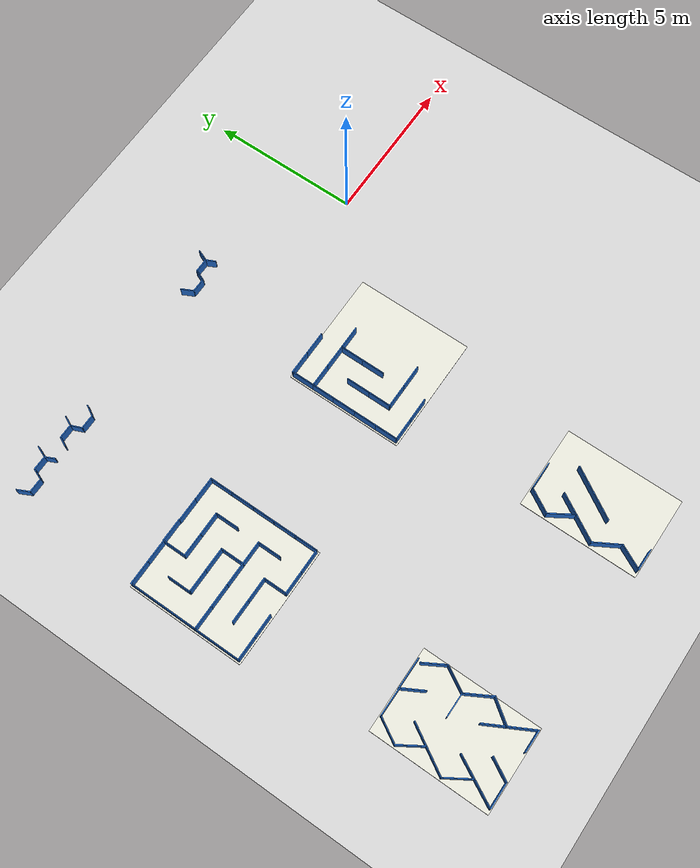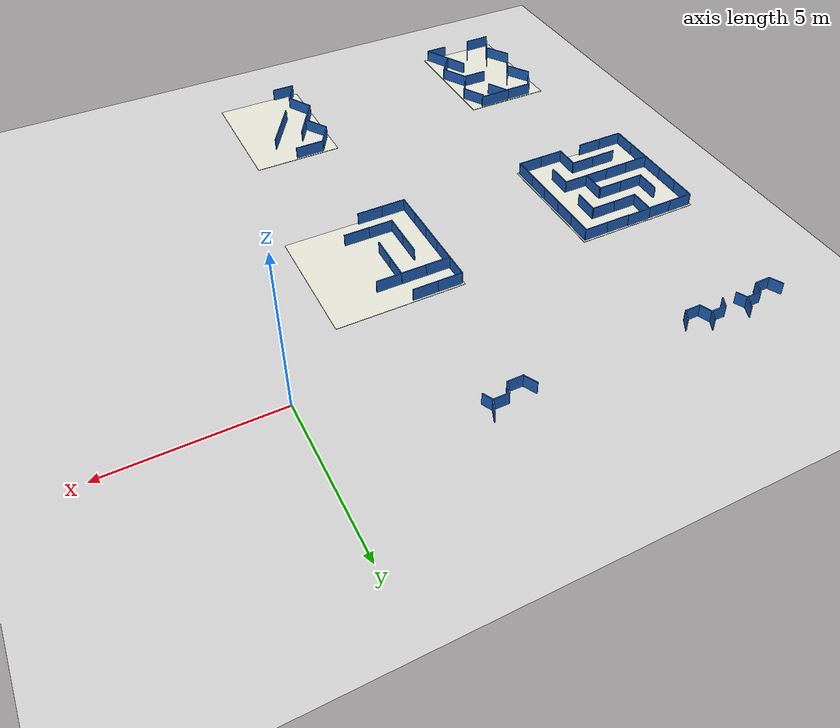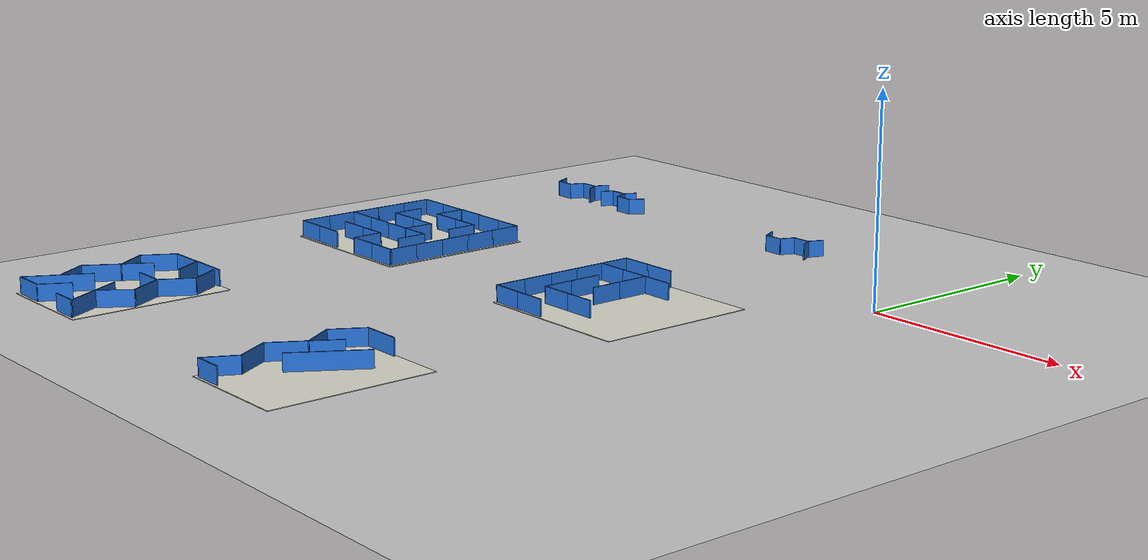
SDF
<sdf version="1.10">
 <world name="nhom8_maze_multi">
  <model name="ground_plane">
   <static>true</static>
   <link name="link">
    <collision name="collision">
     <geometry><plane><normal>0 0 1</normal><size>80.0 80.0</size></plane></geometry>
     <surface><friction><ode><mu>40</mu></ode></friction></surface>
    </collision>
    <visual name="visual">
     <geometry><plane><normal>0 0 1</normal><size>80.0 80.0</size></plane></geometry>
     <material>
      <ambient>0.8 0.8 0.8 1</ambient>
      <diffuse>0.8 0.8 0.8 1</diffuse>
      <specular>0.8 0.8 0.8 1</specular>
     </material>
    </visual>
   </link>
  </model>
  <model name="delta_1_wall_000">
   <static>true</static>
   <pose>-12.441500 -10.090300 0.2000 0 0 0.000000</pose>
   <link name="link">
    <collision name="col"><geometry><box><size>0.9460 0.0300 0.4000</size></box></geometry></collision>
    <visual name="vis">
     <geometry><box><size>0.9460 0.0300 0.4000</size></box></geometry>
     <material><ambient>0.15 0.45 0.85 1</ambient><diffuse>0.15 0.45 0.85 1</diffuse></material>
    </visual>
   </link>
  </model>
  <model name="delta_1_wall_001">
   <static>true</static>
   <pose>-11.494450 -11.616700 0.2000 0 0 0.000000</pose>
   <link name="link">
    <collision name="col"><geometry><box><size>0.8179 0.0300 0.4000</size></box></geometry></collision>
    <visual name="vis">
     <geometry><box><size>0.8179 0.0300 0.4000</size></box></geometry>
     <material><ambient>0.15 0.45 0.85 1</ambient><diffuse>0.15 0.45 0.85 1</diffuse></material>
    </visual>
   </link>
  </model>
  <model name="delta_1_wall_002">
   <static>true</static>
   <pose>-12.841300 -13.911000 0.2000 0 0 0.000000</pose>
   <link name="link">
    <collision name="col"><geometry><box><size>0.8626 0.0300 0.4000</size></box></geometry></collision>
    <visual name="vis">
     <geometry><box><size>0.8626 0.0300 0.4000</size></box></geometry>
     <material><ambient>0.15 0.45 0.85 1</ambient><diffuse>0.15 0.45 0.85 1</diffuse></material>
    </visual>
   </link>
  </model>
  <model name="delta_1_wall_003">
   <static>true</static>
   <pose>-11.094650 -13.911000 0.2000 0 0 0.000000</pose>
   <link name="link">
    <collision name="col"><geometry><box><size>0.7345 0.0300 0.4000</size></box></geometry></collision>
    <visual name="vis">
     <geometry><box><size>0.7345 0.0300 0.4000</size></box></geometry>
     <material><ambient>0.15 0.45 0.85 1</ambient><diffuse>0.15 0.45 0.85 1</diffuse></material>
    </visual>
   </link>
  </model>
  <model name="delta_1_wall_004">
   <static>true</static>
   <pose>-10.866200 -10.524550 0.2000 0 0 -1.047164</pose>
   <link name="link">
    <collision name="col"><geometry><box><size>0.8184 0.0300 0.4000</size></box></geometry></collision>
    <visual name="vis">
     <geometry><box><size>0.8184 0.0300 0.4000</size></box></geometry>
     <material><ambient>0.15 0.45 0.85 1</ambient><diffuse>0.15 0.45 0.85 1</diffuse></material>
    </visual>
   </link>
  </model>
  <model name="delta_1_wall_005">
   <static>true</static>
   <pose>-11.798550 -10.424650 0.2000 0 0 -1.065410</pose>
   <link name="link">
    <collision name="col"><geometry><box><size>0.7942 0.0300 0.4000</size></box></geometry></collision>
    <visual name="vis">
     <geometry><box><size>0.7942 0.0300 0.4000</size></box></geometry>
     <material><ambient>0.15 0.45 0.85 1</ambient><diffuse>0.15 0.45 0.85 1</diffuse></material>
    </visual>
   </link>
  </model>
  <model name="delta_1_wall_006">
   <static>true</static>
   <pose>-10.876250 -12.020350 0.2000 0 0 -1.063840</pose>
   <link name="link">
    <collision name="col"><geometry><box><size>0.9534 0.0300 0.4000</size></box></geometry></collision>
    <visual name="vis">
     <geometry><box><size>0.9534 0.0300 0.4000</size></box></geometry>
     <material><ambient>0.15 0.45 0.85 1</ambient><diffuse>0.15 0.45 0.85 1</diffuse></material>
    </visual>
   </link>
  </model>
  <model name="delta_1_wall_007">
   <static>true</static>
   <pose>-11.122900 -13.194150 0.2000 0 0 -1.082881</pose>
   <link name="link">
    <collision name="col"><geometry><box><size>1.6532 0.0300 0.4000</size></box></geometry></collision>
    <visual name="vis">
     <geometry><box><size>1.6532 0.0300 0.4000</size></box></geometry>
     <material><ambient>0.15 0.45 0.85 1</ambient><diffuse>0.15 0.45 0.85 1</diffuse></material>
    </visual>
   </link>
  </model>
  <model name="delta_1_wall_008">
   <static>true</static>
   <pose>-13.097700 -11.212650 0.2000 0 0 -1.010998</pose>
   <link name="link">
    <collision name="col"><geometry><box><size>0.9107 0.0300 0.4000</size></box></geometry></collision>
    <visual name="vis">
     <geometry><box><size>0.9107 0.0300 0.4000</size></box></geometry>
     <material><ambient>0.15 0.45 0.85 1</ambient><diffuse>0.15 0.45 0.85 1</diffuse></material>
    </visual>
   </link>
  </model>
  <model name="delta_1_wall_009">
   <static>true</static>
   <pose>-13.097950 -12.741300 0.2000 0 0 -1.010777</pose>
   <link name="link">
    <collision name="col"><geometry><box><size>0.9110 0.0300 0.4000</size></box></geometry></collision>
    <visual name="vis">
     <geometry><box><size>0.9110 0.0300 0.4000</size></box></geometry>
     <material><ambient>0.15 0.45 0.85 1</ambient><diffuse>0.15 0.45 0.85 1</diffuse></material>
    </visual>
   </link>
  </model>
  <model name="delta_1_wall_010">
   <static>true</static>
   <pose>-10.905900 -12.774400 0.2000 0 0 0.944004</pose>
   <link name="link">
    <collision name="col"><geometry><box><size>0.8954 0.0300 0.4000</size></box></geometry></collision>
    <visual name="vis">
     <geometry><box><size>0.8954 0.0300 0.4000</size></box></geometry>
     <material><ambient>0.15 0.45 0.85 1</ambient><diffuse>0.15 0.45 0.85 1</diffuse></material>
    </visual>
   </link>
  </model>
  <model name="delta_1_wall_011">
   <static>true</static>
   <pose>-10.884750 -11.241300 0.2000 0 0 1.049310</pose>
   <link name="link">
    <collision name="col"><geometry><box><size>0.8959 0.0300 0.4000</size></box></geometry></collision>
    <visual name="vis">
     <geometry><box><size>0.8959 0.0300 0.4000</size></box></geometry>
     <material><ambient>0.15 0.45 0.85 1</ambient><diffuse>0.15 0.45 0.85 1</diffuse></material>
    </visual>
   </link>
  </model>
  <model name="delta_1_wall_012">
   <static>true</static>
   <pose>-12.240150 -13.576000 0.2000 0 0 1.066422</pose>
   <link name="link">
    <collision name="col"><geometry><box><size>0.7952 0.0300 0.4000</size></box></geometry></collision>
    <visual name="vis">
     <geometry><box><size>0.7952 0.0300 0.4000</size></box></geometry>
     <material><ambient>0.15 0.45 0.85 1</ambient><diffuse>0.15 0.45 0.85 1</diffuse></material>
    </visual>
   </link>
  </model>
  <model name="delta_1_wall_013">
   <static>true</static>
   <pose>-12.876700 -13.193950 0.2000 0 0 1.082511</pose>
   <link name="link">
    <collision name="col"><geometry><box><size>1.6538 0.0300 0.4000</size></box></geometry></collision>
    <visual name="vis">
     <geometry><box><size>1.6538 0.0300 0.4000</size></box></geometry>
     <material><ambient>0.15 0.45 0.85 1</ambient><diffuse>0.15 0.45 0.85 1</diffuse></material>
    </visual>
   </link>
  </model>
  <model name="delta_1_wall_014">
   <static>true</static>
   <pose>-12.913450 -11.657550 0.2000 0 0 1.038568</pose>
   <link name="link">
    <collision name="col"><geometry><box><size>1.6792 0.0300 0.4000</size></box></geometry></collision>
    <visual name="vis">
     <geometry><box><size>1.6792 0.0300 0.4000</size></box></geometry>
     <material><ambient>0.15 0.45 0.85 1</ambient><diffuse>0.15 0.45 0.85 1</diffuse></material>
    </visual>
   </link>
  </model>
  <model name="delta_1_wall_015">
   <static>true</static>
   <pose>-13.115550 -10.464900 0.2000 0 0 1.047645</pose>
   <link name="link">
    <collision name="col"><geometry><box><size>0.8949 0.0300 0.4000</size></box></geometry></collision>
    <visual name="vis">
     <geometry><box><size>0.8949 0.0300 0.4000</size></box></geometry>
     <material><ambient>0.15 0.45 0.85 1</ambient><diffuse>0.15 0.45 0.85 1</diffuse></material>
    </visual>
   </link>
  </model>
  <model name="delta_1_wall_016">
   <static>true</static>
   <pose>-11.505100 -10.077200 0.2000 0 0 0.000000</pose>
   <link name="link">
    <collision name="col"><geometry><box><size>1.0600 0.0300 0.4000</size></box></geometry></collision>
    <visual name="vis">
     <geometry><box><size>1.0600 0.0300 0.4000</size></box></geometry>
     <material><ambient>0.15 0.45 0.85 1</ambient><diffuse>0.15 0.45 0.85 1</diffuse></material>
    </visual>
   </link>
  </model>
  <model name="delta_1_floor">
   <static>true</static>
   <pose>-12.000000 -12.000000 -0.02 0 0 0</pose>
   <link name="link">
    <collision name="col"><geometry><box><size>2.7966 3.9471 0.03</size></box></geometry></collision>
    <visual name="vis">
     <geometry><box><size>2.7966 3.9471 0.03</size></box></geometry>
     <material><ambient>0.87 0.87 0.82 1</ambient><diffuse>0.87 0.87 0.82 1</diffuse></material>
    </visual>
   </link>
  </model>
  <model name="delta_2_wall_000">
   <static>true</static>
   <pose>-4.441500 -10.090300 0.2000 0 0 0.000000</pose>
   <link name="link">
    <collision name="col"><geometry><box><size>0.9460 0.0300 0.4000</size></box></geometry></collision>
    <visual name="vis">
     <geometry><box><size>0.9460 0.0300 0.4000</size></box></geometry>
     <material><ambient>0.15 0.45 0.85 1</ambient><diffuse>0.15 0.45 0.85 1</diffuse></material>
    </visual>
   </link>
  </model>
  <model name="delta_2_wall_001">
   <static>true</static>
   <pose>-4.905350 -13.911000 0.2000 0 0 0.000000</pose>
   <link name="link">
    <collision name="col"><geometry><box><size>0.7345 0.0300 0.4000</size></box></geometry></collision>
    <visual name="vis">
     <geometry><box><size>0.7345 0.0300 0.4000</size></box></geometry>
     <material><ambient>0.15 0.45 0.85 1</ambient><diffuse>0.15 0.45 0.85 1</diffuse></material>
    </visual>
   </link>
  </model>
  <model name="delta_2_wall_007">
   <static>true</static>
   <pose>-5.097150 -11.212150 0.2000 0 0 -1.011161</pose>
   <link name="link">
    <collision name="col"><geometry><box><size>0.9104 0.0300 0.4000</size></box></geometry></collision>
    <visual name="vis">
     <geometry><box><size>0.9104 0.0300 0.4000</size></box></geometry>
     <material><ambient>0.15 0.45 0.85 1</ambient><diffuse>0.15 0.45 0.85 1</diffuse></material>
    </visual>
   </link>
  </model>
  <model name="delta_2_wall_009">
   <static>true</static>
   <pose>-5.103450 -12.763950 0.2000 0 0 -1.047197</pose>
   <link name="link">
    <collision name="col"><geometry><box><size>0.9442 0.0300 0.4000</size></box></geometry></collision>
    <visual name="vis">
     <geometry><box><size>0.9442 0.0300 0.4000</size></box></geometry>
     <material><ambient>0.15 0.45 0.85 1</ambient><diffuse>0.15 0.45 0.85 1</diffuse></material>
    </visual>
   </link>
  </model>
  <model name="delta_2_wall_013">
   <static>true</static>
   <pose>-4.005450 -11.668350 0.2000 0 0 1.024022</pose>
   <link name="link">
    <collision name="col"><geometry><box><size>1.8404 0.0300 0.4000</size></box></geometry></collision>
    <visual name="vis">
     <geometry><box><size>1.8404 0.0300 0.4000</size></box></geometry>
     <material><ambient>0.15 0.45 0.85 1</ambient><diffuse>0.15 0.45 0.85 1</diffuse></material>
    </visual>
   </link>
  </model>
  <model name="delta_2_wall_014">
   <static>true</static>
   <pose>-5.066250 -13.535400 0.2000 0 0 1.099670</pose>
   <link name="link">
    <collision name="col"><geometry><box><size>0.8731 0.0300 0.4000</size></box></geometry></collision>
    <visual name="vis">
     <geometry><box><size>0.8731 0.0300 0.4000</size></box></geometry>
     <material><ambient>0.15 0.45 0.85 1</ambient><diffuse>0.15 0.45 0.85 1</diffuse></material>
    </visual>
   </link>
  </model>
  <model name="delta_2_wall_015">
   <static>true</static>
   <pose>-4.913500 -11.657600 0.2000 0 0 1.038547</pose>
   <link name="link">
    <collision name="col"><geometry><box><size>1.6793 0.0300 0.4000</size></box></geometry></collision>
    <visual name="vis">
     <geometry><box><size>1.6793 0.0300 0.4000</size></box></geometry>
     <material><ambient>0.15 0.45 0.85 1</ambient><diffuse>0.15 0.45 0.85 1</diffuse></material>
    </visual>
   </link>
  </model>
  <model name="delta_2_wall_016">
   <static>true</static>
   <pose>-5.115150 -10.464750 0.2000 0 0 1.048252</pose>
   <link name="link">
    <collision name="col"><geometry><box><size>0.8942 0.0300 0.4000</size></box></geometry></collision>
    <visual name="vis">
     <geometry><box><size>0.8942 0.0300 0.4000</size></box></geometry>
     <material><ambient>0.15 0.45 0.85 1</ambient><diffuse>0.15 0.45 0.85 1</diffuse></material>
    </visual>
   </link>
  </model>
  <model name="delta_2_floor">
   <static>true</static>
   <pose>-4.000000 -12.000000 -0.02 0 0 0</pose>
   <link name="link">
    <collision name="col"><geometry><box><size>2.7961 3.9472 0.03</size></box></geometry></collision>
    <visual name="vis">
     <geometry><box><size>2.7961 3.9472 0.03</size></box></geometry>
     <material><ambient>0.87 0.87 0.82 1</ambient><diffuse>0.87 0.87 0.82 1</diffuse></material>
    </visual>
   </link>
  </model>
  <model name="ortho_3_wall_000">
   <static>true</static>
   <pose>-13.917600 -2.465950 0.2000 0 0 1.570796</pose>
   <link name="link">
    <collision name="col"><geometry><box><size>0.7971 0.0300 0.4000</size></box></geometry></collision>
    <visual name="vis">
     <geometry><box><size>0.7971 0.0300 0.4000</size></box></geometry>
     <material><ambient>0.15 0.45 0.85 1</ambient><diffuse>0.15 0.45 0.85 1</diffuse></material>
    </visual>
   </link>
  </model>
  <model name="ortho_3_wall_001">
   <static>true</static>
   <pose>-13.917600 -3.233000 0.2000 0 0 1.570796</pose>
   <link name="link">
    <collision name="col"><geometry><box><size>0.7970 0.0300 0.4000</size></box></geometry></collision>
    <visual name="vis">
     <geometry><box><size>0.7970 0.0300 0.4000</size></box></geometry>
     <material><ambient>0.15 0.45 0.85 1</ambient><diffuse>0.15 0.45 0.85 1</diffuse></material>
    </visual>
   </link>
  </model>
  <model name="ortho_3_wall_002">
   <static>true</static>
   <pose>-13.917600 -4.000000 0.2000 0 0 1.570796</pose>
   <link name="link">
    <collision name="col"><geometry><box><size>0.7970 0.0300 0.4000</size></box></geometry></collision>
    <visual name="vis">
     <geometry><box><size>0.7970 0.0300 0.4000</size></box></geometry>
     <material><ambient>0.15 0.45 0.85 1</ambient><diffuse>0.15 0.45 0.85 1</diffuse></material>
    </visual>
   </link>
  </model>
  <model name="ortho_3_wall_003">
   <static>true</static>
   <pose>-13.917600 -4.767000 0.2000 0 0 1.570796</pose>
   <link name="link">
    <collision name="col"><geometry><box><size>0.7970 0.0300 0.4000</size></box></geometry></collision>
    <visual name="vis">
     <geometry><box><size>0.7970 0.0300 0.4000</size></box></geometry>
     <material><ambient>0.15 0.45 0.85 1</ambient><diffuse>0.15 0.45 0.85 1</diffuse></material>
    </visual>
   </link>
  </model>
  <model name="ortho_3_wall_004">
   <static>true</static>
   <pose>-13.917600 -5.534050 0.2000 0 0 1.570796</pose>
   <link name="link">
    <collision name="col"><geometry><box><size>0.7971 0.0300 0.4000</size></box></geometry></collision>
    <visual name="vis">
     <geometry><box><size>0.7971 0.0300 0.4000</size></box></geometry>
     <material><ambient>0.15 0.45 0.85 1</ambient><diffuse>0.15 0.45 0.85 1</diffuse></material>
    </visual>
   </link>
  </model>
  <model name="ortho_3_wall_005">
   <static>true</static>
   <pose>-13.150500 -3.233000 0.2000 0 0 1.570796</pose>
   <link name="link">
    <collision name="col"><geometry><box><size>0.7970 0.0300 0.4000</size></box></geometry></collision>
    <visual name="vis">
     <geometry><box><size>0.7970 0.0300 0.4000</size></box></geometry>
     <material><ambient>0.15 0.45 0.85 1</ambient><diffuse>0.15 0.45 0.85 1</diffuse></material>
    </visual>
   </link>
  </model>
  <model name="ortho_3_wall_006">
   <static>true</static>
   <pose>-12.383500 -2.465950 0.2000 0 0 1.570796</pose>
   <link name="link">
    <collision name="col"><geometry><box><size>0.7971 0.0300 0.4000</size></box></geometry></collision>
    <visual name="vis">
     <geometry><box><size>0.7971 0.0300 0.4000</size></box></geometry>
     <material><ambient>0.15 0.45 0.85 1</ambient><diffuse>0.15 0.45 0.85 1</diffuse></material>
    </visual>
   </link>
  </model>
  <model name="ortho_3_wall_007">
   <static>true</static>
   <pose>-11.616500 -4.000000 0.2000 0 0 1.570796</pose>
   <link name="link">
    <collision name="col"><geometry><box><size>0.7970 0.0300 0.4000</size></box></geometry></collision>
    <visual name="vis">
     <geometry><box><size>0.7970 0.0300 0.4000</size></box></geometry>
     <material><ambient>0.15 0.45 0.85 1</ambient><diffuse>0.15 0.45 0.85 1</diffuse></material>
    </visual>
   </link>
  </model>
  <model name="ortho_3_wall_008">
   <static>true</static>
   <pose>-11.616500 -5.534050 0.2000 0 0 1.570796</pose>
   <link name="link">
    <collision name="col"><geometry><box><size>0.7971 0.0300 0.4000</size></box></geometry></collision>
    <visual name="vis">
     <geometry><box><size>0.7971 0.0300 0.4000</size></box></geometry>
     <material><ambient>0.15 0.45 0.85 1</ambient><diffuse>0.15 0.45 0.85 1</diffuse></material>
    </visual>
   </link>
  </model>
  <model name="ortho_3_wall_009">
   <static>true</static>
   <pose>-10.849500 -3.233000 0.2000 0 0 1.570796</pose>
   <link name="link">
    <collision name="col"><geometry><box><size>0.7970 0.0300 0.4000</size></box></geometry></collision>
    <visual name="vis">
     <geometry><box><size>0.7970 0.0300 0.4000</size></box></geometry>
     <material><ambient>0.15 0.45 0.85 1</ambient><diffuse>0.15 0.45 0.85 1</diffuse></material>
    </visual>
   </link>
  </model>
  <model name="ortho_3_wall_010">
   <static>true</static>
   <pose>-10.849500 -4.767000 0.2000 0 0 1.570796</pose>
   <link name="link">
    <collision name="col"><geometry><box><size>0.7970 0.0300 0.4000</size></box></geometry></collision>
    <visual name="vis">
     <geometry><box><size>0.7970 0.0300 0.4000</size></box></geometry>
     <material><ambient>0.15 0.45 0.85 1</ambient><diffuse>0.15 0.45 0.85 1</diffuse></material>
    </visual>
   </link>
  </model>
  <model name="ortho_3_wall_011">
   <static>true</static>
   <pose>-10.082400 -2.465950 0.2000 0 0 1.570796</pose>
   <link name="link">
    <collision name="col"><geometry><box><size>0.7971 0.0300 0.4000</size></box></geometry></collision>
    <visual name="vis">
     <geometry><box><size>0.7971 0.0300 0.4000</size></box></geometry>
     <material><ambient>0.15 0.45 0.85 1</ambient><diffuse>0.15 0.45 0.85 1</diffuse></material>
    </visual>
   </link>
  </model>
  <model name="ortho_3_wall_012">
   <static>true</static>
   <pose>-10.082400 -3.233000 0.2000 0 0 1.570796</pose>
   <link name="link">
    <collision name="col"><geometry><box><size>0.7970 0.0300 0.4000</size></box></geometry></collision>
    <visual name="vis">
     <geometry><box><size>0.7970 0.0300 0.4000</size></box></geometry>
     <material><ambient>0.15 0.45 0.85 1</ambient><diffuse>0.15 0.45 0.85 1</diffuse></material>
    </visual>
   </link>
  </model>
  <model name="ortho_3_wall_013">
   <static>true</static>
   <pose>-10.082400 -4.000000 0.2000 0 0 1.570796</pose>
   <link name="link">
    <collision name="col"><geometry><box><size>0.7970 0.0300 0.4000</size></box></geometry></collision>
    <visual name="vis">
     <geometry><box><size>0.7970 0.0300 0.4000</size></box></geometry>
     <material><ambient>0.15 0.45 0.85 1</ambient><diffuse>0.15 0.45 0.85 1</diffuse></material>
    </visual>
   </link>
  </model>
  <model name="ortho_3_wall_014">
   <static>true</static>
   <pose>-10.082400 -4.767000 0.2000 0 0 1.570796</pose>
   <link name="link">
    <collision name="col"><geometry><box><size>0.7970 0.0300 0.4000</size></box></geometry></collision>
    <visual name="vis">
     <geometry><box><size>0.7970 0.0300 0.4000</size></box></geometry>
     <material><ambient>0.15 0.45 0.85 1</ambient><diffuse>0.15 0.45 0.85 1</diffuse></material>
    </visual>
   </link>
  </model>
  <model name="ortho_3_wall_015">
   <static>true</static>
   <pose>-10.082400 -5.534050 0.2000 0 0 1.570796</pose>
   <link name="link">
    <collision name="col"><geometry><box><size>0.7971 0.0300 0.4000</size></box></geometry></collision>
    <visual name="vis">
     <geometry><box><size>0.7971 0.0300 0.4000</size></box></geometry>
     <material><ambient>0.15 0.45 0.85 1</ambient><diffuse>0.15 0.45 0.85 1</diffuse></material>
    </visual>
   </link>
  </model>
  <model name="ortho_3_wall_016">
   <static>true</static>
   <pose>-13.534050 -2.082400 0.2000 0 0 0.000000</pose>
   <link name="link">
    <collision name="col"><geometry><box><size>0.7971 0.0300 0.4000</size></box></geometry></collision>
    <visual name="vis">
     <geometry><box><size>0.7971 0.0300 0.4000</size></box></geometry>
     <material><ambient>0.15 0.45 0.85 1</ambient><diffuse>0.15 0.45 0.85 1</diffuse></material>
    </visual>
   </link>
  </model>
  <model name="ortho_3_wall_017">
   <static>true</static>
   <pose>-12.767000 -2.082400 0.2000 0 0 0.000000</pose>
   <link name="link">
    <collision name="col"><geometry><box><size>0.7970 0.0300 0.4000</size></box></geometry></collision>
    <visual name="vis">
     <geometry><box><size>0.7970 0.0300 0.4000</size></box></geometry>
     <material><ambient>0.15 0.45 0.85 1</ambient><diffuse>0.15 0.45 0.85 1</diffuse></material>
    </visual>
   </link>
  </model>
  <model name="ortho_3_wall_018">
   <static>true</static>
   <pose>-11.233000 -2.082400 0.2000 0 0 0.000000</pose>
   <link name="link">
    <collision name="col"><geometry><box><size>0.7970 0.0300 0.4000</size></box></geometry></collision>
    <visual name="vis">
     <geometry><box><size>0.7970 0.0300 0.4000</size></box></geometry>
     <material><ambient>0.15 0.45 0.85 1</ambient><diffuse>0.15 0.45 0.85 1</diffuse></material>
    </visual>
   </link>
  </model>
  <model name="ortho_3_wall_019">
   <static>true</static>
   <pose>-10.465950 -2.082400 0.2000 0 0 0.000000</pose>
   <link name="link">
    <collision name="col"><geometry><box><size>0.7971 0.0300 0.4000</size></box></geometry></collision>
    <visual name="vis">
     <geometry><box><size>0.7971 0.0300 0.4000</size></box></geometry>
     <material><ambient>0.15 0.45 0.85 1</ambient><diffuse>0.15 0.45 0.85 1</diffuse></material>
    </visual>
   </link>
  </model>
  <model name="ortho_3_wall_020">
   <static>true</static>
   <pose>-12.000000 -2.849500 0.2000 0 0 0.000000</pose>
   <link name="link">
    <collision name="col"><geometry><box><size>0.7970 0.0300 0.4000</size></box></geometry></collision>
    <visual name="vis">
     <geometry><box><size>0.7970 0.0300 0.4000</size></box></geometry>
     <material><ambient>0.15 0.45 0.85 1</ambient><diffuse>0.15 0.45 0.85 1</diffuse></material>
    </visual>
   </link>
  </model>
  <model name="ortho_3_wall_021">
   <static>true</static>
   <pose>-11.233000 -2.849500 0.2000 0 0 0.000000</pose>
   <link name="link">
    <collision name="col"><geometry><box><size>0.7970 0.0300 0.4000</size></box></geometry></collision>
    <visual name="vis">
     <geometry><box><size>0.7970 0.0300 0.4000</size></box></geometry>
     <material><ambient>0.15 0.45 0.85 1</ambient><diffuse>0.15 0.45 0.85 1</diffuse></material>
    </visual>
   </link>
  </model>
  <model name="ortho_3_wall_022">
   <static>true</static>
   <pose>-12.767000 -3.616500 0.2000 0 0 0.000000</pose>
   <link name="link">
    <collision name="col"><geometry><box><size>0.7970 0.0300 0.4000</size></box></geometry></collision>
    <visual name="vis">
     <geometry><box><size>0.7970 0.0300 0.4000</size></box></geometry>
     <material><ambient>0.15 0.45 0.85 1</ambient><diffuse>0.15 0.45 0.85 1</diffuse></material>
    </visual>
   </link>
  </model>
  <model name="ortho_3_wall_023">
   <static>true</static>
   <pose>-12.000000 -3.616500 0.2000 0 0 0.000000</pose>
   <link name="link">
    <collision name="col"><geometry><box><size>0.7970 0.0300 0.4000</size></box></geometry></collision>
    <visual name="vis">
     <geometry><box><size>0.7970 0.0300 0.4000</size></box></geometry>
     <material><ambient>0.15 0.45 0.85 1</ambient><diffuse>0.15 0.45 0.85 1</diffuse></material>
    </visual>
   </link>
  </model>
  <model name="ortho_3_wall_024">
   <static>true</static>
   <pose>-13.534050 -4.383500 0.2000 0 0 0.000000</pose>
   <link name="link">
    <collision name="col"><geometry><box><size>0.7971 0.0300 0.4000</size></box></geometry></collision>
    <visual name="vis">
     <geometry><box><size>0.7971 0.0300 0.4000</size></box></geometry>
     <material><ambient>0.15 0.45 0.85 1</ambient><diffuse>0.15 0.45 0.85 1</diffuse></material>
    </visual>
   </link>
  </model>
  <model name="ortho_3_wall_025">
   <static>true</static>
   <pose>-12.767000 -4.383500 0.2000 0 0 0.000000</pose>
   <link name="link">
    <collision name="col"><geometry><box><size>0.7970 0.0300 0.4000</size></box></geometry></collision>
    <visual name="vis">
     <geometry><box><size>0.7970 0.0300 0.4000</size></box></geometry>
     <material><ambient>0.15 0.45 0.85 1</ambient><diffuse>0.15 0.45 0.85 1</diffuse></material>
    </visual>
   </link>
  </model>
  <model name="ortho_3_wall_026">
   <static>true</static>
   <pose>-12.000000 -4.383500 0.2000 0 0 0.000000</pose>
   <link name="link">
    <collision name="col"><geometry><box><size>0.7970 0.0300 0.4000</size></box></geometry></collision>
    <visual name="vis">
     <geometry><box><size>0.7970 0.0300 0.4000</size></box></geometry>
     <material><ambient>0.15 0.45 0.85 1</ambient><diffuse>0.15 0.45 0.85 1</diffuse></material>
    </visual>
   </link>
  </model>
  <model name="ortho_3_wall_027">
   <static>true</static>
   <pose>-11.233000 -4.383500 0.2000 0 0 0.000000</pose>
   <link name="link">
    <collision name="col"><geometry><box><size>0.7970 0.0300 0.4000</size></box></geometry></collision>
    <visual name="vis">
     <geometry><box><size>0.7970 0.0300 0.4000</size></box></geometry>
     <material><ambient>0.15 0.45 0.85 1</ambient><diffuse>0.15 0.45 0.85 1</diffuse></material>
    </visual>
   </link>
  </model>
  <model name="ortho_3_wall_028">
   <static>true</static>
   <pose>-12.767000 -5.150500 0.2000 0 0 0.000000</pose>
   <link name="link">
    <collision name="col"><geometry><box><size>0.7970 0.0300 0.4000</size></box></geometry></collision>
    <visual name="vis">
     <geometry><box><size>0.7970 0.0300 0.4000</size></box></geometry>
     <material><ambient>0.15 0.45 0.85 1</ambient><diffuse>0.15 0.45 0.85 1</diffuse></material>
    </visual>
   </link>
  </model>
  <model name="ortho_3_wall_029">
   <static>true</static>
   <pose>-12.000000 -5.150500 0.2000 0 0 0.000000</pose>
   <link name="link">
    <collision name="col"><geometry><box><size>0.7970 0.0300 0.4000</size></box></geometry></collision>
    <visual name="vis">
     <geometry><box><size>0.7970 0.0300 0.4000</size></box></geometry>
     <material><ambient>0.15 0.45 0.85 1</ambient><diffuse>0.15 0.45 0.85 1</diffuse></material>
    </visual>
   </link>
  </model>
  <model name="ortho_3_wall_030">
   <static>true</static>
   <pose>-13.534050 -5.917600 0.2000 0 0 0.000000</pose>
   <link name="link">
    <collision name="col"><geometry><box><size>0.7971 0.0300 0.4000</size></box></geometry></collision>
    <visual name="vis">
     <geometry><box><size>0.7971 0.0300 0.4000</size></box></geometry>
     <material><ambient>0.15 0.45 0.85 1</ambient><diffuse>0.15 0.45 0.85 1</diffuse></material>
    </visual>
   </link>
  </model>
  <model name="ortho_3_wall_031">
   <static>true</static>
   <pose>-12.767000 -5.917600 0.2000 0 0 0.000000</pose>
   <link name="link">
    <collision name="col"><geometry><box><size>0.7970 0.0300 0.4000</size></box></geometry></collision>
    <visual name="vis">
     <geometry><box><size>0.7970 0.0300 0.4000</size></box></geometry>
     <material><ambient>0.15 0.45 0.85 1</ambient><diffuse>0.15 0.45 0.85 1</diffuse></material>
    </visual>
   </link>
  </model>
  <model name="ortho_3_wall_032">
   <static>true</static>
   <pose>-11.233000 -5.917600 0.2000 0 0 0.000000</pose>
   <link name="link">
    <collision name="col"><geometry><box><size>0.7970 0.0300 0.4000</size></box></geometry></collision>
    <visual name="vis">
     <geometry><box><size>0.7970 0.0300 0.4000</size></box></geometry>
     <material><ambient>0.15 0.45 0.85 1</ambient><diffuse>0.15 0.45 0.85 1</diffuse></material>
    </visual>
   </link>
  </model>
  <model name="ortho_3_wall_033">
   <static>true</static>
   <pose>-10.465950 -5.917600 0.2000 0 0 0.000000</pose>
   <link name="link">
    <collision name="col"><geometry><box><size>0.7971 0.0300 0.4000</size></box></geometry></collision>
    <visual name="vis">
     <geometry><box><size>0.7971 0.0300 0.4000</size></box></geometry>
     <material><ambient>0.15 0.45 0.85 1</ambient><diffuse>0.15 0.45 0.85 1</diffuse></material>
    </visual>
   </link>
  </model>
  <model name="ortho_3_wall_034">
   <static>true</static>
   <pose>-11.996600 -2.067400 0.2000 0 0 0.000000</pose>
   <link name="link">
    <collision name="col"><geometry><box><size>0.7950 0.0300 0.4000</size></box></geometry></collision>
    <visual name="vis">
     <geometry><box><size>0.7950 0.0300 0.4000</size></box></geometry>
     <material><ambient>0.15 0.45 0.85 1</ambient><diffuse>0.15 0.45 0.85 1</diffuse></material>
    </visual>
   </link>
  </model>
  <model name="ortho_3_floor">
   <static>true</static>
   <pose>-12.000000 -4.000000 -0.02 0 0 0</pose>
   <link name="link">
    <collision name="col"><geometry><box><size>3.9652 3.9652 0.03</size></box></geometry></collision>
    <visual name="vis">
     <geometry><box><size>3.9652 3.9652 0.03</size></box></geometry>
     <material><ambient>0.87 0.87 0.82 1</ambient><diffuse>0.87 0.87 0.82 1</diffuse></material>
    </visual>
   </link>
  </model>
  <model name="ortho_4_wall_000">
   <static>true</static>
   <pose>-5.917600 -2.465950 0.2000 0 0 1.570796</pose>
   <link name="link">
    <collision name="col"><geometry><box><size>0.7971 0.0300 0.4000</size></box></geometry></collision>
    <visual name="vis">
     <geometry><box><size>0.7971 0.0300 0.4000</size></box></geometry>
     <material><ambient>0.15 0.45 0.85 1</ambient><diffuse>0.15 0.45 0.85 1</diffuse></material>
    </visual>
   </link>
  </model>
  <model name="ortho_4_wall_001">
   <static>true</static>
   <pose>-5.917600 -3.233000 0.2000 0 0 1.570796</pose>
   <link name="link">
    <collision name="col"><geometry><box><size>0.7970 0.0300 0.4000</size></box></geometry></collision>
    <visual name="vis">
     <geometry><box><size>0.7970 0.0300 0.4000</size></box></geometry>
     <material><ambient>0.15 0.45 0.85 1</ambient><diffuse>0.15 0.45 0.85 1</diffuse></material>
    </visual>
   </link>
  </model>
  <model name="ortho_4_wall_002">
   <static>true</static>
   <pose>-5.917600 -4.000000 0.2000 0 0 1.570796</pose>
   <link name="link">
    <collision name="col"><geometry><box><size>0.7970 0.0300 0.4000</size></box></geometry></collision>
    <visual name="vis">
     <geometry><box><size>0.7970 0.0300 0.4000</size></box></geometry>
     <material><ambient>0.15 0.45 0.85 1</ambient><diffuse>0.15 0.45 0.85 1</diffuse></material>
    </visual>
   </link>
  </model>
  <model name="ortho_4_wall_003">
   <static>true</static>
   <pose>-5.917600 -4.767000 0.2000 0 0 1.570796</pose>
   <link name="link">
    <collision name="col"><geometry><box><size>0.7970 0.0300 0.4000</size></box></geometry></collision>
    <visual name="vis">
     <geometry><box><size>0.7970 0.0300 0.4000</size></box></geometry>
     <material><ambient>0.15 0.45 0.85 1</ambient><diffuse>0.15 0.45 0.85 1</diffuse></material>
    </visual>
   </link>
  </model>
  <model name="ortho_4_wall_004">
   <static>true</static>
   <pose>-5.917600 -5.534050 0.2000 0 0 1.570796</pose>
   <link name="link">
    <collision name="col"><geometry><box><size>0.7971 0.0300 0.4000</size></box></geometry></collision>
    <visual name="vis">
     <geometry><box><size>0.7971 0.0300 0.4000</size></box></geometry>
     <material><ambient>0.15 0.45 0.85 1</ambient><diffuse>0.15 0.45 0.85 1</diffuse></material>
    </visual>
   </link>
  </model>
  <model name="ortho_4_wall_005">
   <static>true</static>
   <pose>-5.150500 -4.000000 0.2000 0 0 1.570796</pose>
   <link name="link">
    <collision name="col"><geometry><box><size>0.7970 0.0300 0.4000</size></box></geometry></collision>
    <visual name="vis">
     <geometry><box><size>0.7970 0.0300 0.4000</size></box></geometry>
     <material><ambient>0.15 0.45 0.85 1</ambient><diffuse>0.15 0.45 0.85 1</diffuse></material>
    </visual>
   </link>
  </model>
  <model name="ortho_4_wall_006">
   <static>true</static>
   <pose>-5.150500 -4.767000 0.2000 0 0 1.570796</pose>
   <link name="link">
    <collision name="col"><geometry><box><size>0.7970 0.0300 0.4000</size></box></geometry></collision>
    <visual name="vis">
     <geometry><box><size>0.7970 0.0300 0.4000</size></box></geometry>
     <material><ambient>0.15 0.45 0.85 1</ambient><diffuse>0.15 0.45 0.85 1</diffuse></material>
    </visual>
   </link>
  </model>
  <model name="ortho_4_wall_007">
   <static>true</static>
   <pose>-4.383500 -3.233000 0.2000 0 0 1.570796</pose>
   <link name="link">
    <collision name="col"><geometry><box><size>0.7970 0.0300 0.4000</size></box></geometry></collision>
    <visual name="vis">
     <geometry><box><size>0.7970 0.0300 0.4000</size></box></geometry>
     <material><ambient>0.15 0.45 0.85 1</ambient><diffuse>0.15 0.45 0.85 1</diffuse></material>
    </visual>
   </link>
  </model>
  <model name="ortho_4_wall_008">
   <static>true</static>
   <pose>-4.383500 -4.000000 0.2000 0 0 1.570796</pose>
   <link name="link">
    <collision name="col"><geometry><box><size>0.7970 0.0300 0.4000</size></box></geometry></collision>
    <visual name="vis">
     <geometry><box><size>0.7970 0.0300 0.4000</size></box></geometry>
     <material><ambient>0.15 0.45 0.85 1</ambient><diffuse>0.15 0.45 0.85 1</diffuse></material>
    </visual>
   </link>
  </model>
  <model name="ortho_4_wall_018">
   <static>true</static>
   <pose>-5.534050 -2.082400 0.2000 0 0 0.000000</pose>
   <link name="link">
    <collision name="col"><geometry><box><size>0.7971 0.0300 0.4000</size></box></geometry></collision>
    <visual name="vis">
     <geometry><box><size>0.7971 0.0300 0.4000</size></box></geometry>
     <material><ambient>0.15 0.45 0.85 1</ambient><diffuse>0.15 0.45 0.85 1</diffuse></material>
    </visual>
   </link>
  </model>
  <model name="ortho_4_wall_019">
   <static>true</static>
   <pose>-4.767000 -2.082400 0.2000 0 0 0.000000</pose>
   <link name="link">
    <collision name="col"><geometry><box><size>0.7970 0.0300 0.4000</size></box></geometry></collision>
    <visual name="vis">
     <geometry><box><size>0.7970 0.0300 0.4000</size></box></geometry>
     <material><ambient>0.15 0.45 0.85 1</ambient><diffuse>0.15 0.45 0.85 1</diffuse></material>
    </visual>
   </link>
  </model>
  <model name="ortho_4_wall_022">
   <static>true</static>
   <pose>-5.534050 -2.849500 0.2000 0 0 0.000000</pose>
   <link name="link">
    <collision name="col"><geometry><box><size>0.7971 0.0300 0.4000</size></box></geometry></collision>
    <visual name="vis">
     <geometry><box><size>0.7971 0.0300 0.4000</size></box></geometry>
     <material><ambient>0.15 0.45 0.85 1</ambient><diffuse>0.15 0.45 0.85 1</diffuse></material>
    </visual>
   </link>
  </model>
  <model name="ortho_4_wall_023">
   <static>true</static>
   <pose>-4.767000 -2.849500 0.2000 0 0 0.000000</pose>
   <link name="link">
    <collision name="col"><geometry><box><size>0.7970 0.0300 0.4000</size></box></geometry></collision>
    <visual name="vis">
     <geometry><box><size>0.7970 0.0300 0.4000</size></box></geometry>
     <material><ambient>0.15 0.45 0.85 1</ambient><diffuse>0.15 0.45 0.85 1</diffuse></material>
    </visual>
   </link>
  </model>
  <model name="ortho_4_wall_024">
   <static>true</static>
   <pose>-4.000000 -2.849500 0.2000 0 0 0.000000</pose>
   <link name="link">
    <collision name="col"><geometry><box><size>0.7970 0.0300 0.4000</size></box></geometry></collision>
    <visual name="vis">
     <geometry><box><size>0.7970 0.0300 0.4000</size></box></geometry>
     <material><ambient>0.15 0.45 0.85 1</ambient><diffuse>0.15 0.45 0.85 1</diffuse></material>
    </visual>
   </link>
  </model>
  <model name="ortho_4_wall_027">
   <static>true</static>
   <pose>-4.767000 -5.150500 0.2000 0 0 0.000000</pose>
   <link name="link">
    <collision name="col"><geometry><box><size>0.7970 0.0300 0.4000</size></box></geometry></collision>
    <visual name="vis">
     <geometry><box><size>0.7970 0.0300 0.4000</size></box></geometry>
     <material><ambient>0.15 0.45 0.85 1</ambient><diffuse>0.15 0.45 0.85 1</diffuse></material>
    </visual>
   </link>
  </model>
  <model name="ortho_4_wall_028">
   <static>true</static>
   <pose>-4.000000 -5.150500 0.2000 0 0 0.000000</pose>
   <link name="link">
    <collision name="col"><geometry><box><size>0.7970 0.0300 0.4000</size></box></geometry></collision>
    <visual name="vis">
     <geometry><box><size>0.7970 0.0300 0.4000</size></box></geometry>
     <material><ambient>0.15 0.45 0.85 1</ambient><diffuse>0.15 0.45 0.85 1</diffuse></material>
    </visual>
   </link>
  </model>
  <model name="ortho_4_wall_030">
   <static>true</static>
   <pose>-5.534050 -5.917600 0.2000 0 0 0.000000</pose>
   <link name="link">
    <collision name="col"><geometry><box><size>0.7971 0.0300 0.4000</size></box></geometry></collision>
    <visual name="vis">
     <geometry><box><size>0.7971 0.0300 0.4000</size></box></geometry>
     <material><ambient>0.15 0.45 0.85 1</ambient><diffuse>0.15 0.45 0.85 1</diffuse></material>
    </visual>
   </link>
  </model>
  <model name="ortho_4_wall_031">
   <static>true</static>
   <pose>-4.767000 -5.917600 0.2000 0 0 0.000000</pose>
   <link name="link">
    <collision name="col"><geometry><box><size>0.7970 0.0300 0.4000</size></box></geometry></collision>
    <visual name="vis">
     <geometry><box><size>0.7970 0.0300 0.4000</size></box></geometry>
     <material><ambient>0.15 0.45 0.85 1</ambient><diffuse>0.15 0.45 0.85 1</diffuse></material>
    </visual>
   </link>
  </model>
  <model name="ortho_4_floor">
   <static>true</static>
   <pose>-4.000000 -4.000000 -0.02 0 0 0</pose>
   <link name="link">
    <collision name="col"><geometry><box><size>3.9652 3.9652 0.03</size></box></geometry></collision>
    <visual name="vis">
     <geometry><box><size>3.9652 3.9652 0.03</size></box></geometry>
     <material><ambient>0.87 0.87 0.82 1</ambient><diffuse>0.87 0.87 0.82 1</diffuse></material>
    </visual>
   </link>
  </model>
  <model name="sigma_1_wall_014">
   <static>true</static>
   <pose>-12.609400 2.419200 0.2000 0 0 0.000000</pose>
   <link name="link">
    <collision name="col"><geometry><box><size>0.4966 0.0300 0.4000</size></box></geometry></collision>
    <visual name="vis">
     <geometry><box><size>0.4966 0.0300 0.4000</size></box></geometry>
     <material><ambient>0.15 0.45 0.85 1</ambient><diffuse>0.15 0.45 0.85 1</diffuse></material>
    </visual>
   </link>
  </model>
  <model name="sigma_1_wall_015">
   <static>true</static>
   <pose>-11.391600 2.419200 0.2000 0 0 0.000000</pose>
   <link name="link">
    <collision name="col"><geometry><box><size>0.4934 0.0300 0.4000</size></box></geometry></collision>
    <visual name="vis">
     <geometry><box><size>0.4934 0.0300 0.4000</size></box></geometry>
     <material><ambient>0.15 0.45 0.85 1</ambient><diffuse>0.15 0.45 0.85 1</diffuse></material>
    </visual>
   </link>
  </model>
  <model name="sigma_1_wall_016">
   <static>true</static>
   <pose>-13.217250 2.073700 0.2000 0 0 0.000000</pose>
   <link name="link">
    <collision name="col"><geometry><box><size>0.4995 0.0300 0.4000</size></box></geometry></collision>
    <visual name="vis">
     <geometry><box><size>0.4995 0.0300 0.4000</size></box></geometry>
     <material><ambient>0.15 0.45 0.85 1</ambient><diffuse>0.15 0.45 0.85 1</diffuse></material>
    </visual>
   </link>
  </model>
  <model name="sigma_1_wall_017">
   <static>true</static>
   <pose>-10.782350 2.073700 0.2000 0 0 0.000000</pose>
   <link name="link">
    <collision name="col"><geometry><box><size>0.4993 0.0300 0.4000</size></box></geometry></collision>
    <visual name="vis">
     <geometry><box><size>0.4993 0.0300 0.4000</size></box></geometry>
     <material><ambient>0.15 0.45 0.85 1</ambient><diffuse>0.15 0.45 0.85 1</diffuse></material>
    </visual>
   </link>
  </model>
  <model name="sigma_1_wall_033">
   <static>true</static>
   <pose>-11.088500 2.246500 0.2000 0 0 -1.178519</pose>
   <link name="link">
    <collision name="col"><geometry><box><size>0.4039 0.0300 0.4000</size></box></geometry></collision>
    <visual name="vis">
     <geometry><box><size>0.4039 0.0300 0.4000</size></box></geometry>
     <material><ambient>0.15 0.45 0.85 1</ambient><diffuse>0.15 0.45 0.85 1</diffuse></material>
    </visual>
   </link>
  </model>
  <model name="sigma_1_wall_038">
   <static>true</static>
   <pose>-12.307350 2.275850 0.2000 0 0 -1.123473</pose>
   <link name="link">
    <collision name="col"><geometry><box><size>0.3479 0.0300 0.4000</size></box></geometry></collision>
    <visual name="vis">
     <geometry><box><size>0.3479 0.0300 0.4000</size></box></geometry>
     <material><ambient>0.15 0.45 0.85 1</ambient><diffuse>0.15 0.45 0.85 1</diffuse></material>
    </visual>
   </link>
  </model>
  <model name="sigma_1_wall_041">
   <static>true</static>
   <pose>-13.544100 2.260150 0.2000 0 0 -1.112064</pose>
   <link name="link">
    <collision name="col"><geometry><box><size>0.4458 0.0300 0.4000</size></box></geometry></collision>
    <visual name="vis">
     <geometry><box><size>0.4458 0.0300 0.4000</size></box></geometry>
     <material><ambient>0.15 0.45 0.85 1</ambient><diffuse>0.15 0.45 0.85 1</diffuse></material>
    </visual>
   </link>
  </model>
  <model name="sigma_1_wall_042">
   <static>true</static>
   <pose>-10.455250 2.235750 0.2000 0 0 1.052420</pose>
   <link name="link">
    <collision name="col"><geometry><box><size>0.4031 0.0300 0.4000</size></box></geometry></collision>
    <visual name="vis">
     <geometry><box><size>0.4031 0.0300 0.4000</size></box></geometry>
     <material><ambient>0.15 0.45 0.85 1</ambient><diffuse>0.15 0.45 0.85 1</diffuse></material>
    </visual>
   </link>
  </model>
  <model name="sigma_1_wall_045">
   <static>true</static>
   <pose>-11.090800 2.564400 0.2000 0 0 1.126475</pose>
   <link name="link">
    <collision name="col"><geometry><box><size>0.3518 0.0300 0.4000</size></box></geometry></collision>
    <visual name="vis">
     <geometry><box><size>0.3518 0.0300 0.4000</size></box></geometry>
     <material><ambient>0.15 0.45 0.85 1</ambient><diffuse>0.15 0.45 0.85 1</diffuse></material>
    </visual>
   </link>
  </model>
  <model name="sigma_1_wall_048">
   <static>true</static>
   <pose>-11.692200 2.275750 0.2000 0 0 1.123463</pose>
   <link name="link">
    <collision name="col"><geometry><box><size>0.3482 0.0300 0.4000</size></box></geometry></collision>
    <visual name="vis">
     <geometry><box><size>0.3482 0.0300 0.4000</size></box></geometry>
     <material><ambient>0.15 0.45 0.85 1</ambient><diffuse>0.15 0.45 0.85 1</diffuse></material>
    </visual>
   </link>
  </model>
  <model name="sigma_1_wall_052">
   <static>true</static>
   <pose>-12.303500 2.596650 0.2000 0 0 1.182386</pose>
   <link name="link">
    <collision name="col"><geometry><box><size>0.4135 0.0300 0.4000</size></box></geometry></collision>
    <visual name="vis">
     <geometry><box><size>0.4135 0.0300 0.4000</size></box></geometry>
     <material><ambient>0.15 0.45 0.85 1</ambient><diffuse>0.15 0.45 0.85 1</diffuse></material>
    </visual>
   </link>
  </model>
  <model name="sigma_1_wall_054">
   <static>true</static>
   <pose>-12.912600 2.246450 0.2000 0 0 1.186416</pose>
   <link name="link">
    <collision name="col"><geometry><box><size>0.4027 0.0300 0.4000</size></box></geometry></collision>
    <visual name="vis">
     <geometry><box><size>0.4027 0.0300 0.4000</size></box></geometry>
     <material><ambient>0.15 0.45 0.85 1</ambient><diffuse>0.15 0.45 0.85 1</diffuse></material>
    </visual>
   </link>
  </model>
  <model name="sigma_2_wall_015">
   <static>true</static>
   <pose>-4.607650 2.419600 0.2000 0 0 0.000000</pose>
   <link name="link">
    <collision name="col"><geometry><box><size>0.4935 0.0300 0.4000</size></box></geometry></collision>
    <visual name="vis">
     <geometry><box><size>0.4935 0.0300 0.4000</size></box></geometry>
     <material><ambient>0.15 0.45 0.85 1</ambient><diffuse>0.15 0.45 0.85 1</diffuse></material>
    </visual>
   </link>
  </model>
  <model name="sigma_2_wall_017">
   <static>true</static>
   <pose>-5.217300 2.073700 0.2000 0 0 0.000000</pose>
   <link name="link">
    <collision name="col"><geometry><box><size>0.4994 0.0300 0.4000</size></box></geometry></collision>
    <visual name="vis">
     <geometry><box><size>0.4994 0.0300 0.4000</size></box></geometry>
     <material><ambient>0.15 0.45 0.85 1</ambient><diffuse>0.15 0.45 0.85 1</diffuse></material>
    </visual>
   </link>
  </model>
  <model name="sigma_2_wall_037">
   <static>true</static>
   <pose>-4.307200 2.276100 0.2000 0 0 -1.124105</pose>
   <link name="link">
    <collision name="col"><geometry><box><size>0.3482 0.0300 0.4000</size></box></geometry></collision>
    <visual name="vis">
     <geometry><box><size>0.3482 0.0300 0.4000</size></box></geometry>
     <material><ambient>0.15 0.45 0.85 1</ambient><diffuse>0.15 0.45 0.85 1</diffuse></material>
    </visual>
   </link>
  </model>
  <model name="sigma_2_wall_041">
   <static>true</static>
   <pose>-5.544050 2.260100 0.2000 0 0 -1.112166</pose>
   <link name="link">
    <collision name="col"><geometry><box><size>0.4457 0.0300 0.4000</size></box></geometry></collision>
    <visual name="vis">
     <geometry><box><size>0.4457 0.0300 0.4000</size></box></geometry>
     <material><ambient>0.15 0.45 0.85 1</ambient><diffuse>0.15 0.45 0.85 1</diffuse></material>
    </visual>
   </link>
  </model>
  <model name="sigma_2_wall_050">
   <static>true</static>
   <pose>-4.304150 2.596100 0.2000 0 0 1.184463</pose>
   <link name="link">
    <collision name="col"><geometry><box><size>0.4111 0.0300 0.4000</size></box></geometry></collision>
    <visual name="vis">
     <geometry><box><size>0.4111 0.0300 0.4000</size></box></geometry>
     <material><ambient>0.15 0.45 0.85 1</ambient><diffuse>0.15 0.45 0.85 1</diffuse></material>
    </visual>
   </link>
  </model>
  <model name="sigma_2_wall_053">
   <static>true</static>
   <pose>-4.911000 2.246650 0.2000 0 0 1.178346</pose>
   <link name="link">
    <collision name="col"><geometry><box><size>0.4042 0.0300 0.4000</size></box></geometry></collision>
    <visual name="vis">
     <geometry><box><size>0.4042 0.0300 0.4000</size></box></geometry>
     <material><ambient>0.15 0.45 0.85 1</ambient><diffuse>0.15 0.45 0.85 1</diffuse></material>
    </visual>
   </link>
  </model>
 </world>
</sdf>
